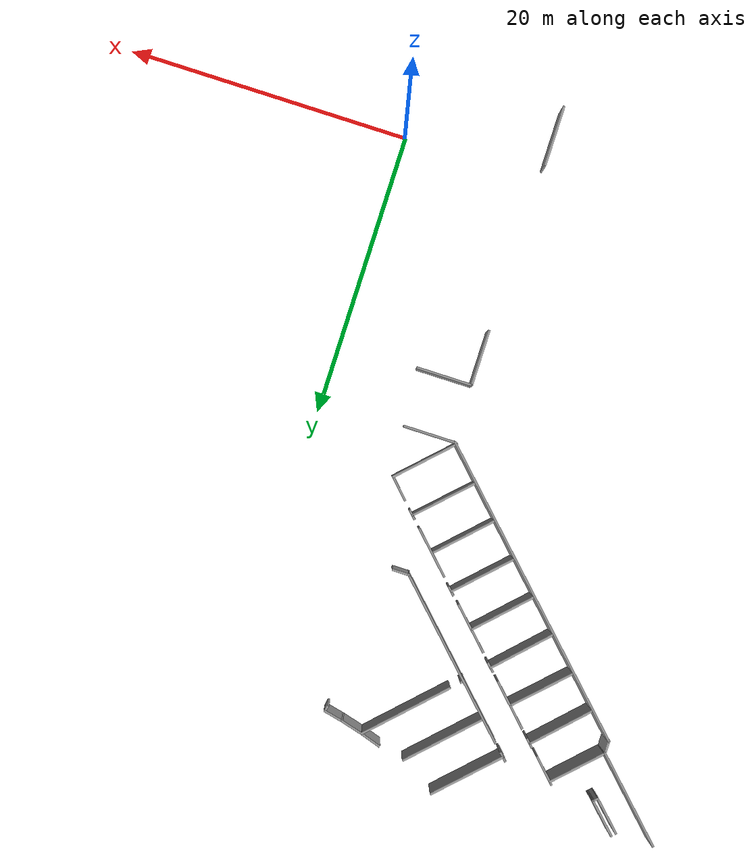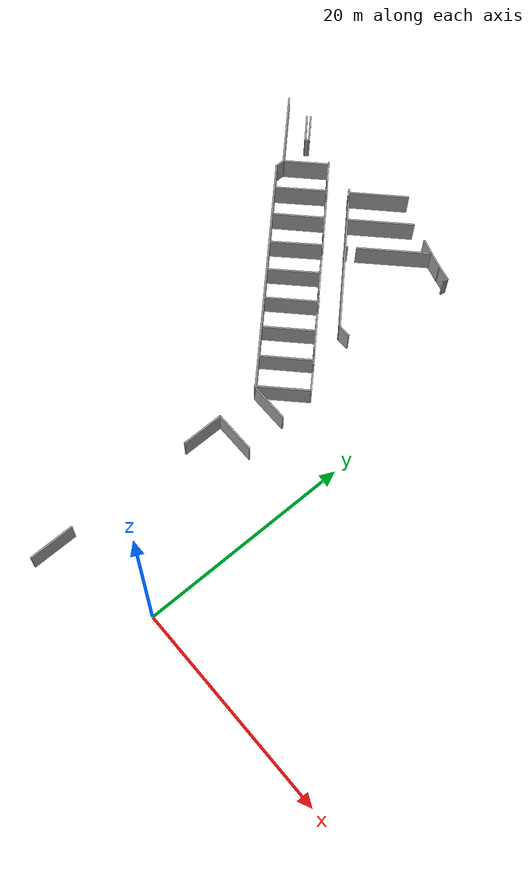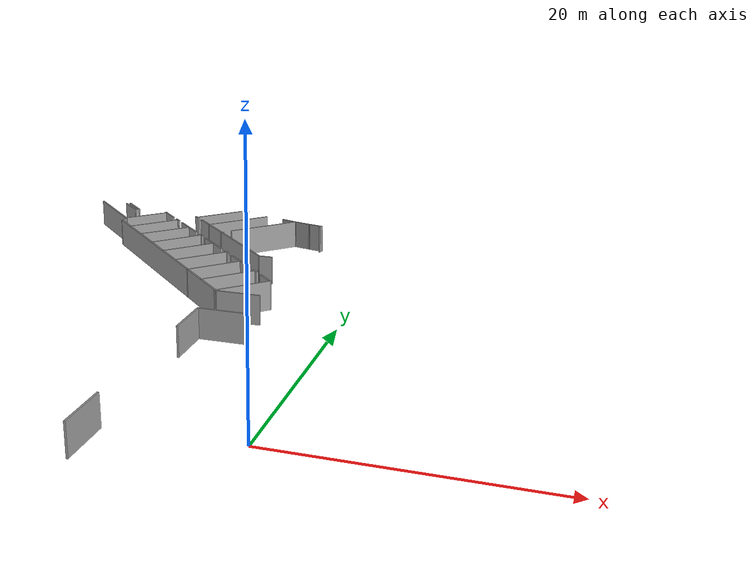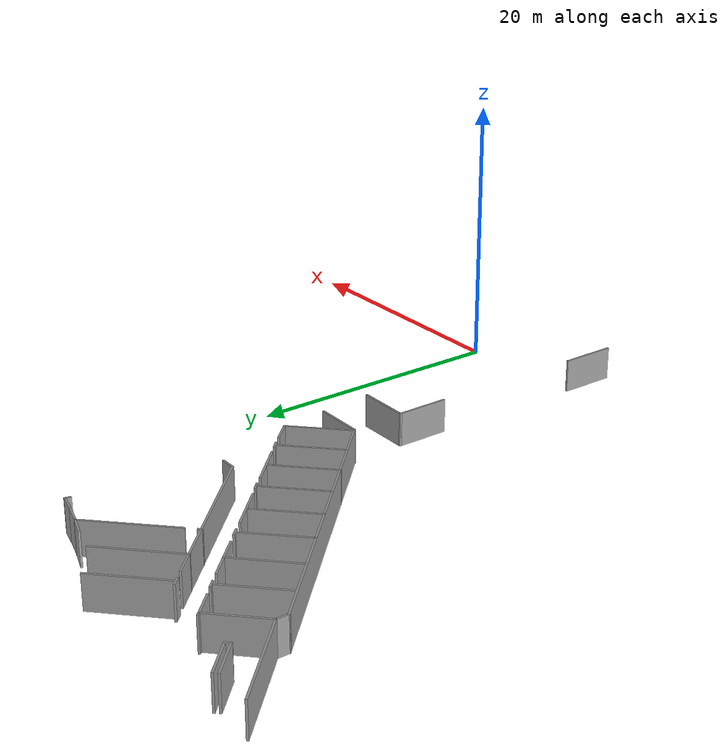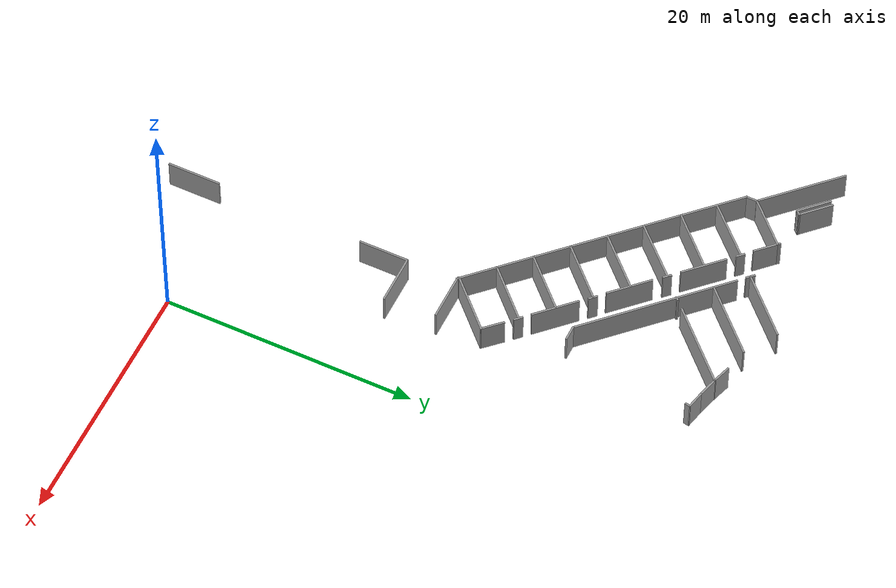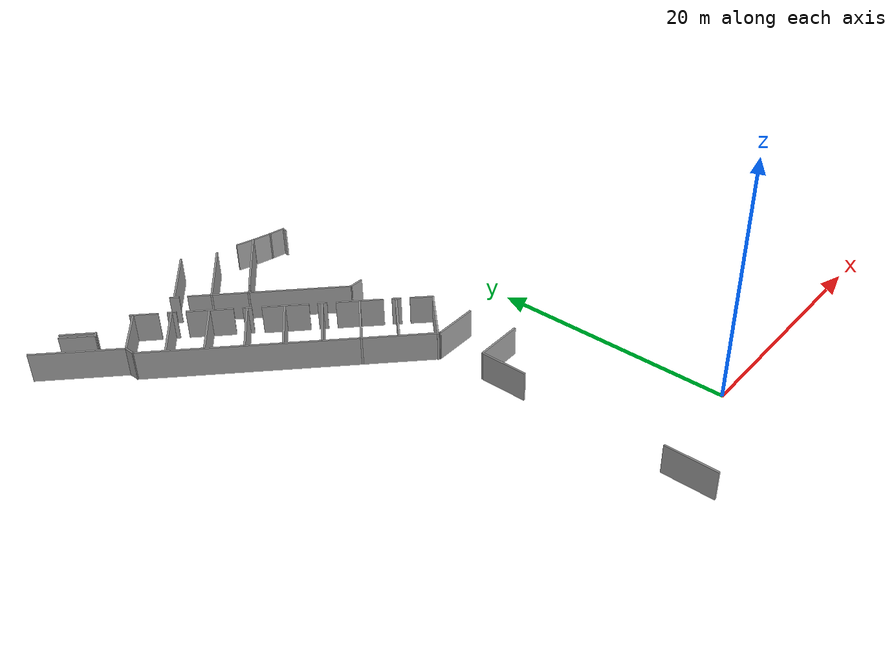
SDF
<sdf version="1.7">
 <model name="TI_1">
  <pose>-0.810812 4.85868 0 0 -0 0</pose>
  <link name="Wall_100">
   <collision name="Wall_100_Collision">
    <geometry><box><size>1.75 0.15 2.5</size></box></geometry>
    <pose>0 0 1.25 0 -0 0</pose>
   </collision>
   <visual name="Wall_100_Visual">
    <pose>0 0 1.25 0 -0 0</pose>
    <geometry><box><size>1.75 0.15 2.5</size></box></geometry>
    <material>
     <script><uri>file://media/materials/scripts/gazebo.material</uri><name>Gazebo/Grey</name></script>
     <ambient>1 1 1 1</ambient>
    </material>
    <meta><layer>0</layer></meta>
   </visual>
   <pose>-8.06735 34.8632 0 0 -0 -0.261799</pose>
  </link>
  <link name="Wall_101">
   <collision name="Wall_101_Collision">
    <geometry><box><size>1.47097 0.15 2.5</size></box></geometry>
    <pose>0 0 1.25 0 -0 0</pose>
   </collision>
   <visual name="Wall_101_Visual">
    <pose>0 0 1.25 0 -0 0</pose>
    <geometry><box><size>1.47097 0.15 2.5</size></box></geometry>
    <material>
     <script><uri>file://media/materials/scripts/gazebo.material</uri><name>Gazebo/Grey</name></script>
     <ambient>1 1 1 1</ambient>
    </material>
    <meta><layer>0</layer></meta>
   </visual>
   <pose>-6.64996 34.5124 0 0 -0 -0.219449</pose>
  </link>
  <link name="Wall_102">
   <collision name="Wall_102_Collision">
    <geometry><box><size>0.491524 0.15 2.5</size></box></geometry>
    <pose>0 0 1.25 0 -0 0</pose>
   </collision>
   <visual name="Wall_102_Visual">
    <pose>0 0 1.25 0 -0 0</pose>
    <geometry><box><size>0.491524 0.15 2.5</size></box></geometry>
    <material>
     <script><uri>file://media/materials/scripts/gazebo.material</uri><name>Gazebo/Grey</name></script>
     <ambient>1 1 1 1</ambient>
    </material>
    <meta><layer>0</layer></meta>
   </visual>
   <pose>-6.04049 34.2015 0 0 -0 -1.77829</pose>
  </link>
  <link name="Wall_286">
   <collision name="Wall_286_Collision">
    <geometry><box><size>7.25 0.15 2.5</size></box></geometry>
    <pose>0 0 1.25 0 -0 0</pose>
   </collision>
   <visual name="Wall_286_Visual">
    <pose>0 0 1.25 0 -0 0</pose>
    <geometry><box><size>7.25 0.15 2.5</size></box></geometry>
    <material>
     <script><uri>file://media/materials/scripts/gazebo.material</uri><name>Gazebo/Grey</name></script>
     <ambient>1 1 1 1</ambient>
    </material>
    <meta><layer>0</layer></meta>
   </visual>
   <pose>-27.5174 33.7929 0 0 -0 -0.785398</pose>
  </link>
  <link name="Wall_287">
   <collision name="Wall_287_Collision">
    <geometry><box><size>4.3655 0.15 2.5</size></box></geometry>
    <pose>0 0 1.25 0 -0 0</pose>
   </collision>
   <visual name="Wall_287_Visual">
    <pose>0 0 1.25 0 -0 0</pose>
    <geometry><box><size>4.3655 0.15 2.5</size></box></geometry>
    <material>
     <script><uri>file://media/materials/scripts/gazebo.material</uri><name>Gazebo/Grey</name></script>
     <ambient>1 1 1 1</ambient>
    </material>
    <meta><layer>0</layer></meta>
   </visual>
   <pose>-23.5168 32.7732 0 0 -0 0.785443</pose>
  </link>
  <link name="Wall_288">
   <collision name="Wall_288_Collision">
    <geometry><box><size>0.354135 0.15 2.5</size></box></geometry>
    <pose>0 0 1.25 0 -0 0</pose>
   </collision>
   <visual name="Wall_288_Visual">
    <pose>0 0 1.25 0 -0 0</pose>
    <geometry><box><size>0.354135 0.15 2.5</size></box></geometry>
    <material>
     <script><uri>file://media/materials/scripts/gazebo.material</uri><name>Gazebo/Grey</name></script>
     <ambient>1 1 1 1</ambient>
    </material>
    <meta><layer>0</layer></meta>
   </visual>
   <pose>-22.0907 34.3407 0 0 -0 2.28545</pose>
  </link>
  <link name="Wall_292">
   <collision name="Wall_292_Collision">
    <geometry><box><size>2.80551 0.15 2.5</size></box></geometry>
    <pose>0 0 1.25 0 -0 0</pose>
   </collision>
   <visual name="Wall_292_Visual">
    <pose>0 0 1.25 0 -0 0</pose>
    <geometry><box><size>2.80551 0.15 2.5</size></box></geometry>
    <material>
     <script><uri>file://media/materials/scripts/gazebo.material</uri><name>Gazebo/Grey</name></script>
     <ambient>1 1 1 1</ambient>
    </material>
    <meta><layer>0</layer></meta>
   </visual>
   <pose>-26.1712 35.5585 0 0 -0 -0.782643</pose>
  </link>
  <link name="Wall_293">
   <collision name="Wall_293_Collision">
    <geometry><box><size>0.501141 0.15 2.5</size></box></geometry>
    <pose>0 0 1.25 0 -0 0</pose>
   </collision>
   <visual name="Wall_293_Visual">
    <pose>0 0 1.25 0 -0 0</pose>
    <geometry><box><size>0.501141 0.15 2.5</size></box></geometry>
    <material>
     <script><uri>file://media/materials/scripts/gazebo.material</uri><name>Gazebo/Grey</name></script>
     <ambient>1 1 1 1</ambient>
    </material>
    <meta><layer>0</layer></meta>
   </visual>
   <pose>-25.3539 34.4981 0 0 -0 -2.35619</pose>
  </link>
  <link name="Wall_294">
   <collision name="Wall_294_Collision">
    <geometry><box><size>2.79823 0.15 2.5</size></box></geometry>
    <pose>0 0 1.25 0 -0 0</pose>
   </collision>
   <visual name="Wall_294_Visual">
    <pose>0 0 1.25 0 -0 0</pose>
    <geometry><box><size>2.79823 0.15 2.5</size></box></geometry>
    <material>
     <script><uri>file://media/materials/scripts/gazebo.material</uri><name>Gazebo/Grey</name></script>
     <ambient>1 1 1 1</ambient>
    </material>
    <meta><layer>0</layer></meta>
   </visual>
   <pose>-26.4195 35.3051 0 0 -0 2.36172</pose>
  </link>
  <link name="Wall_297">
   <collision name="Wall_297_Collision">
    <geometry><box><size>1 0.15 2.5</size></box></geometry>
    <pose>0 0 1.25 0 -0 0</pose>
   </collision>
   <visual name="Wall_297_Visual">
    <pose>0 0 1.25 0 -0 0</pose>
    <geometry><box><size>1 0.15 2.5</size></box></geometry>
    <material>
     <script><uri>file://media/materials/scripts/gazebo.material</uri><name>Gazebo/Grey</name></script>
     <ambient>1 1 1 1</ambient>
    </material>
    <meta><layer>0</layer></meta>
   </visual>
   <pose>-25.0071 30.8577 0 0 -0 -1.5708</pose>
  </link>
  <link name="Wall_299">
   <collision name="Wall_299_Collision">
    <geometry><box><size>23 0.15 2.5</size></box></geometry>
    <pose>0 0 1.25 0 -0 0</pose>
   </collision>
   <visual name="Wall_299_Visual">
    <pose>0 0 1.25 0 -0 0</pose>
    <geometry><box><size>23 0.15 2.5</size></box></geometry>
    <material>
     <script><uri>file://media/materials/scripts/gazebo.material</uri><name>Gazebo/Grey</name></script>
     <ambient>1 1 1 1</ambient>
    </material>
    <meta><layer>0</layer></meta>
   </visual>
   <pose>-16.9284 22.354 0 0 -0 -0.785398</pose>
  </link>
  <link name="Wall_300">
   <collision name="Wall_300_Collision">
    <geometry><box><size>3.75 0.15 2.5</size></box></geometry>
    <pose>0 0 1.25 0 -0 0</pose>
   </collision>
   <visual name="Wall_300_Visual">
    <pose>0 0 1.25 0 -0 0</pose>
    <geometry><box><size>3.75 0.15 2.5</size></box></geometry>
    <material>
     <script><uri>file://media/materials/scripts/gazebo.material</uri><name>Gazebo/Grey</name></script>
     <ambient>1 1 1 1</ambient>
    </material>
    <meta><layer>0</layer></meta>
   </visual>
   <pose>-7.04974 14.2753 0 0 -0 0</pose>
  </link>
  <link name="Wall_304">
   <collision name="Wall_304_Collision">
    <geometry><box><size>2 0.15 2.5</size></box></geometry>
    <pose>0 0 1.25 0 -0 0</pose>
   </collision>
   <visual name="Wall_304_Visual">
    <pose>0 0 1.25 0 -0 0</pose>
    <geometry><box><size>2 0.15 2.5</size></box></geometry>
    <material>
     <script><uri>file://media/materials/scripts/gazebo.material</uri><name>Gazebo/Grey</name></script>
     <ambient>1 1 1 1</ambient>
    </material>
    <meta><layer>0</layer></meta>
   </visual>
   <pose>-21.3698 33.6096 0 0 -0 -0.785398</pose>
  </link>
  <link name="Wall_306">
   <collision name="Wall_306_Collision">
    <geometry><box><size>0.717184 0.15 2.5</size></box></geometry>
    <pose>0 0 1.25 0 -0 0</pose>
   </collision>
   <visual name="Wall_306_Visual">
    <pose>0 0 1.25 0 -0 0</pose>
    <geometry><box><size>0.717184 0.15 2.5</size></box></geometry>
    <material>
     <script><uri>file://media/materials/scripts/gazebo.material</uri><name>Gazebo/Grey</name></script>
     <ambient>1 1 1 1</ambient>
    </material>
    <meta><layer>0</layer></meta>
   </visual>
   <pose>-19.9184 32.2127 0 0 -0 -0.790688</pose>
  </link>
  <link name="Wall_309">
   <collision name="Wall_309_Collision">
    <geometry><box><size>4.99165 0.15 2.5</size></box></geometry>
    <pose>0 0 1.25 0 -0 0</pose>
   </collision>
   <visual name="Wall_309_Visual">
    <pose>0 0 1.25 0 -0 0</pose>
    <geometry><box><size>4.99165 0.15 2.5</size></box></geometry>
    <material>
     <script><uri>file://media/materials/scripts/gazebo.material</uri><name>Gazebo/Grey</name></script>
     <ambient>1 1 1 1</ambient>
    </material>
    <meta><layer>0</layer></meta>
   </visual>
   <pose>-21.6347 30.5013 0 0 -0 -2.34807</pose>
  </link>
  <link name="Wall_311">
   <collision name="Wall_311_Collision">
    <geometry><box><size>3.67321 0.15 2.5</size></box></geometry>
    <pose>0 0 1.25 0 -0 0</pose>
   </collision>
   <visual name="Wall_311_Visual">
    <pose>0 0 1.25 0 -0 0</pose>
    <geometry><box><size>3.67321 0.15 2.5</size></box></geometry>
    <material>
     <script><uri>file://media/materials/scripts/gazebo.material</uri><name>Gazebo/Grey</name></script>
     <ambient>1 1 1 1</ambient>
    </material>
    <meta><layer>0</layer></meta>
   </visual>
   <pose>-17.8604 30.1542 0 0 -0 -0.787539</pose>
  </link>
  <link name="Wall_313">
   <collision name="Wall_313_Collision">
    <geometry><box><size>4.95578 0.15 2.5</size></box></geometry>
    <pose>0 0 1.25 0 -0 0</pose>
   </collision>
   <visual name="Wall_313_Visual">
    <pose>0 0 1.25 0 -0 0</pose>
    <geometry><box><size>4.95578 0.15 2.5</size></box></geometry>
    <material>
     <script><uri>file://media/materials/scripts/gazebo.material</uri><name>Gazebo/Grey</name></script>
     <ambient>1 1 1 1</ambient>
    </material>
    <meta><layer>0</layer></meta>
   </visual>
   <pose>-19.6155 28.4418 0 0 -0 -2.3609</pose>
  </link>
  <link name="Wall_315">
   <collision name="Wall_315_Collision">
    <geometry><box><size>0.723368 0.15 2.5</size></box></geometry>
    <pose>0 0 1.25 0 -0 0</pose>
   </collision>
   <visual name="Wall_315_Visual">
    <pose>0 0 1.25 0 -0 0</pose>
    <geometry><box><size>0.723368 0.15 2.5</size></box></geometry>
    <material>
     <script><uri>file://media/materials/scripts/gazebo.material</uri><name>Gazebo/Grey</name></script>
     <ambient>1 1 1 1</ambient>
    </material>
    <meta><layer>0</layer></meta>
   </visual>
   <pose>-15.8065 28.1164 0 0 -0 -0.785398</pose>
  </link>
  <link name="Wall_318">
   <collision name="Wall_318_Collision">
    <geometry><box><size>5.00129 0.15 2.5</size></box></geometry>
    <pose>0 0 1.25 0 -0 0</pose>
   </collision>
   <visual name="Wall_318_Visual">
    <pose>0 0 1.25 0 -0 0</pose>
    <geometry><box><size>5.00129 0.15 2.5</size></box></geometry>
    <material>
     <script><uri>file://media/materials/scripts/gazebo.material</uri><name>Gazebo/Grey</name></script>
     <ambient>1 1 1 1</ambient>
    </material>
    <meta><layer>0</layer></meta>
   </visual>
   <pose>-17.5243 26.3826 0 0 -0 -2.34531</pose>
  </link>
  <link name="Wall_320">
   <collision name="Wall_320_Collision">
    <geometry><box><size>3.68074 0.15 2.5</size></box></geometry>
    <pose>0 0 1.25 0 -0 0</pose>
   </collision>
   <visual name="Wall_320_Visual">
    <pose>0 0 1.25 0 -0 0</pose>
    <geometry><box><size>3.68074 0.15 2.5</size></box></geometry>
    <material>
     <script><uri>file://media/materials/scripts/gazebo.material</uri><name>Gazebo/Grey</name></script>
     <ambient>1 1 1 1</ambient>
    </material>
    <meta><layer>0</layer></meta>
   </visual>
   <pose>-13.7367 26.0038 0 0 -0 -0.785398</pose>
  </link>
  <link name="Wall_322">
   <collision name="Wall_322_Collision">
    <geometry><box><size>4.9633 0.15 2.5</size></box></geometry>
    <pose>0 0 1.25 0 -0 0</pose>
   </collision>
   <visual name="Wall_322_Visual">
    <pose>0 0 1.25 0 -0 0</pose>
    <geometry><box><size>4.9633 0.15 2.5</size></box></geometry>
    <material>
     <script><uri>file://media/materials/scripts/gazebo.material</uri><name>Gazebo/Grey</name></script>
     <ambient>1 1 1 1</ambient>
    </material>
    <meta><layer>0</layer></meta>
   </visual>
   <pose>-15.4971 24.3288 0 0 -0 -2.35306</pose>
  </link>
  <link name="Wall_324">
   <collision name="Wall_324_Collision">
    <geometry><box><size>0.75 0.15 2.5</size></box></geometry>
    <pose>0 0 1.25 0 -0 0</pose>
   </collision>
   <visual name="Wall_324_Visual">
    <pose>0 0 1.25 0 -0 0</pose>
    <geometry><box><size>0.75 0.15 2.5</size></box></geometry>
    <material>
     <script><uri>file://media/materials/scripts/gazebo.material</uri><name>Gazebo/Grey</name></script>
     <ambient>1 1 1 1</ambient>
    </material>
    <meta><layer>0</layer></meta>
   </visual>
   <pose>-11.6788 23.9993 0 0 -0 -0.785398</pose>
  </link>
  <link name="Wall_326">
   <collision name="Wall_326_Collision">
    <geometry><box><size>5.00854 0.15 2.5</size></box></geometry>
    <pose>0 0 1.25 0 -0 0</pose>
   </collision>
   <visual name="Wall_326_Visual">
    <pose>0 0 1.25 0 -0 0</pose>
    <geometry><box><size>5.00854 0.15 2.5</size></box></geometry>
    <material>
     <script><uri>file://media/materials/scripts/gazebo.material</uri><name>Gazebo/Grey</name></script>
     <ambient>1 1 1 1</ambient>
    </material>
    <meta><layer>0</layer></meta>
   </visual>
   <pose>-13.4166 22.2803 0 0 -0 -2.35619</pose>
  </link>
  <link name="Wall_328">
   <collision name="Wall_328_Collision">
    <geometry><box><size>3.75 0.15 2.5</size></box></geometry>
    <pose>0 0 1.25 0 -0 0</pose>
   </collision>
   <visual name="Wall_328_Visual">
    <pose>0 0 1.25 0 -0 0</pose>
    <geometry><box><size>3.75 0.15 2.5</size></box></geometry>
    <material>
     <script><uri>file://media/materials/scripts/gazebo.material</uri><name>Gazebo/Grey</name></script>
     <ambient>1 1 1 1</ambient>
    </material>
    <meta><layer>0</layer></meta>
   </visual>
   <pose>-9.62588 21.9037 0 0 -0 -0.785398</pose>
  </link>
  <link name="Wall_330">
   <collision name="Wall_330_Collision">
    <geometry><box><size>4.99345 0.15 2.5</size></box></geometry>
    <pose>0 0 1.25 0 -0 0</pose>
   </collision>
   <visual name="Wall_330_Visual">
    <pose>0 0 1.25 0 -0 0</pose>
    <geometry><box><size>4.99345 0.15 2.5</size></box></geometry>
    <material>
     <script><uri>file://media/materials/scripts/gazebo.material</uri><name>Gazebo/Grey</name></script>
     <ambient>1 1 1 1</ambient>
    </material>
    <meta><layer>0</layer></meta>
   </visual>
   <pose>-11.3628 20.2051 0 0 -0 -2.35619</pose>
  </link>
  <link name="Wall_332">
   <collision name="Wall_332_Collision">
    <geometry><box><size>0.75 0.15 2.5</size></box></geometry>
    <pose>0 0 1.25 0 -0 0</pose>
   </collision>
   <visual name="Wall_332_Visual">
    <pose>0 0 1.25 0 -0 0</pose>
    <geometry><box><size>0.75 0.15 2.5</size></box></geometry>
    <material>
     <script><uri>file://media/materials/scripts/gazebo.material</uri><name>Gazebo/Grey</name></script>
     <ambient>1 1 1 1</ambient>
    </material>
    <meta><layer>0</layer></meta>
   </visual>
   <pose>-7.57111 19.8596 0 0 -0 -0.785398</pose>
  </link>
  <link name="Wall_335">
   <collision name="Wall_335_Collision">
    <geometry><box><size>4.97839 0.15 2.5</size></box></geometry>
    <pose>0 0 1.25 0 -0 0</pose>
   </collision>
   <visual name="Wall_335_Visual">
    <pose>0 0 1.25 0 -0 0</pose>
    <geometry><box><size>4.97839 0.15 2.5</size></box></geometry>
    <material>
     <script><uri>file://media/materials/scripts/gazebo.material</uri><name>Gazebo/Grey</name></script>
     <ambient>1 1 1 1</ambient>
    </material>
    <meta><layer>0</layer></meta>
   </visual>
   <pose>-9.32495 18.1673 0 0 -0 -2.35932</pose>
  </link>
  <link name="Wall_337">
   <collision name="Wall_337_Collision">
    <geometry><box><size>1.91563 0.15 2.5</size></box></geometry>
    <pose>0 0 1.25 0 -0 0</pose>
   </collision>
   <visual name="Wall_337_Visual">
    <pose>0 0 1.25 0 -0 0</pose>
    <geometry><box><size>1.91563 0.15 2.5</size></box></geometry>
    <material>
     <script><uri>file://media/materials/scripts/gazebo.material</uri><name>Gazebo/Grey</name></script>
     <ambient>1 1 1 1</ambient>
    </material>
    <meta><layer>0</layer></meta>
   </visual>
   <pose>-6.16685 18.4233 0 0 -0 -0.802491</pose>
  </link>
  <link name="Wall_346">
   <collision name="Wall_346_Collision">
    <geometry><box><size>5 0.15 2.5</size></box></geometry>
    <pose>0 0 1.25 0 -0 0</pose>
   </collision>
   <visual name="Wall_346_Visual">
    <pose>0 0 1.25 0 -0 0</pose>
    <geometry><box><size>5 0.15 2.5</size></box></geometry>
    <material>
     <script><uri>file://media/materials/scripts/gazebo.material</uri><name>Gazebo/Grey</name></script>
     <ambient>1 1 1 1</ambient>
    </material>
    <meta><layer>0</layer></meta>
   </visual>
   <pose>-7.2681 16.0738 0 0 -0 -2.35619</pose>
  </link>
  <link name="Wall_361">
   <collision name="Wall_361_Collision">
    <geometry><box><size>4 0.15 2.5</size></box></geometry>
    <pose>0 0 1.25 0 -0 0</pose>
   </collision>
   <visual name="Wall_361_Visual">
    <pose>0 0 1.25 0 -0 0</pose>
    <geometry><box><size>4 0.15 2.5</size></box></geometry>
    <material>
     <script><uri>file://media/materials/scripts/gazebo.material</uri><name>Gazebo/Grey</name></script>
     <ambient>1 1 1 1</ambient>
    </material>
    <meta><layer>0</layer></meta>
   </visual>
   <pose>-6.80464 10.2221 0 0 -0 3.14159</pose>
  </link>
  <link name="Wall_363">
   <collision name="Wall_363_Collision">
    <geometry><box><size>4 0.15 2.5</size></box></geometry>
    <pose>0 0 1.25 0 -0 0</pose>
   </collision>
   <visual name="Wall_363_Visual">
    <pose>0 0 1.25 0 -0 0</pose>
    <geometry><box><size>4 0.15 2.5</size></box></geometry>
    <material>
     <script><uri>file://media/materials/scripts/gazebo.material</uri><name>Gazebo/Grey</name></script>
     <ambient>1 1 1 1</ambient>
    </material>
    <meta><layer>0</layer></meta>
   </visual>
   <pose>-8.72964 8.29712 0 0 -0 -1.5708</pose>
  </link>
  <link name="Wall_400">
   <collision name="Wall_400_Collision">
    <geometry><box><size>4.25 0.15 2.5</size></box></geometry>
    <pose>0 0 1.25 0 -0 0</pose>
   </collision>
   <visual name="Wall_400_Visual">
    <pose>0 0 1.25 0 -0 0</pose>
    <geometry><box><size>4.25 0.15 2.5</size></box></geometry>
    <material>
     <script><uri>file://media/materials/scripts/gazebo.material</uri><name>Gazebo/Grey</name></script>
     <ambient>1 1 1 1</ambient>
    </material>
    <meta><layer>0</layer></meta>
   </visual>
   <pose>-8.91092 -7.63957 0 0 -0 -1.5708</pose>
  </link>
  <link name="Wall_54">
   <collision name="Wall_54_Collision">
    <geometry><box><size>0.75 0.15 2.5</size></box></geometry>
    <pose>0 0 1.25 0 -0 0</pose>
   </collision>
   <visual name="Wall_54_Visual">
    <pose>0 0 1.25 0 -0 0</pose>
    <geometry><box><size>0.75 0.15 2.5</size></box></geometry>
    <material>
     <script><uri>file://media/materials/scripts/gazebo.material</uri><name>Gazebo/Grey</name></script>
     <ambient>1 1 1 1</ambient>
    </material>
    <meta><layer>0</layer></meta>
   </visual>
   <pose>-18.4744 33.656 0 0 -0 -0.785398</pose>
  </link>
  <link name="Wall_56">
   <collision name="Wall_56_Collision">
    <geometry><box><size>13 0.15 2.5</size></box></geometry>
    <pose>0 0 1.25 0 -0 0</pose>
   </collision>
   <visual name="Wall_56_Visual">
    <pose>0 0 1.25 0 -0 0</pose>
    <geometry><box><size>13 0.15 2.5</size></box></geometry>
    <material>
     <script><uri>file://media/materials/scripts/gazebo.material</uri><name>Gazebo/Grey</name></script>
     <ambient>1 1 1 1</ambient>
    </material>
    <meta><layer>0</layer></meta>
   </visual>
   <pose>-13.1373 28.3524 0 0 -0 -0.785398</pose>
  </link>
  <link name="Wall_57">
   <collision name="Wall_57_Collision">
    <geometry><box><size>1.25 0.15 2.5</size></box></geometry>
    <pose>0 0 1.25 0 -0 0</pose>
   </collision>
   <visual name="Wall_57_Visual">
    <pose>0 0 1.25 0 -0 0</pose>
    <geometry><box><size>1.25 0.15 2.5</size></box></geometry>
    <material>
     <script><uri>file://media/materials/scripts/gazebo.material</uri><name>Gazebo/Grey</name></script>
     <ambient>1 1 1 1</ambient>
    </material>
    <meta><layer>0</layer></meta>
   </visual>
   <pose>-8.04418 23.8093 0 0 -0 0</pose>
  </link>
  <link name="Wall_83">
   <collision name="Wall_83_Collision">
    <geometry><box><size>5.60192 0.15 2.5</size></box></geometry>
    <pose>0 0 1.25 0 -0 0</pose>
   </collision>
   <visual name="Wall_83_Visual">
    <pose>0 0 1.25 0 -0 0</pose>
    <geometry><box><size>5.60192 0.15 2.5</size></box></geometry>
    <material>
     <script><uri>file://media/materials/scripts/gazebo.material</uri><name>Gazebo/Grey</name></script>
     <ambient>1 1 1 1</ambient>
    </material>
    <meta><layer>0</layer></meta>
   </visual>
   <pose>-16.533 35.5883 0 0 -0 -2.35791</pose>
  </link>
  <link name="Wall_90">
   <collision name="Wall_90_Collision">
    <geometry><box><size>6.23721 0.15 2.5</size></box></geometry>
    <pose>0 0 1.25 0 -0 0</pose>
   </collision>
   <visual name="Wall_90_Visual">
    <pose>0 0 1.25 0 -0 0</pose>
    <geometry><box><size>6.23721 0.15 2.5</size></box></geometry>
    <material>
     <script><uri>file://media/materials/scripts/gazebo.material</uri><name>Gazebo/Grey</name></script>
     <ambient>1 1 1 1</ambient>
    </material>
    <meta><layer>0</layer></meta>
   </visual>
   <pose>-14.2506 33.7629 0 0 -0 -2.35619</pose>
  </link>
  <link name="Wall_95">
   <collision name="Wall_95_Collision">
    <geometry><box><size>1.58752 0.15 2.5</size></box></geometry>
    <pose>0 0 1.25 0 -0 0</pose>
   </collision>
   <visual name="Wall_95_Visual">
    <pose>0 0 1.25 0 -0 0</pose>
    <geometry><box><size>1.58752 0.15 2.5</size></box></geometry>
    <material>
     <script><uri>file://media/materials/scripts/gazebo.material</uri><name>Gazebo/Grey</name></script>
     <ambient>1 1 1 1</ambient>
    </material>
    <meta><layer>0</layer></meta>
   </visual>
   <pose>-9.52395 35.2915 0 0 -0 -0.312901</pose>
  </link>
  <link name="Wall_96">
   <collision name="Wall_96_Collision">
    <geometry><box><size>6.87173 0.15 2.5</size></box></geometry>
    <pose>0 0 1.25 0 -0 0</pose>
   </collision>
   <visual name="Wall_96_Visual">
    <pose>0 0 1.25 0 -0 0</pose>
    <geometry><box><size>6.87173 0.15 2.5</size></box></geometry>
    <material>
     <script><uri>file://media/materials/scripts/gazebo.material</uri><name>Gazebo/Grey</name></script>
     <ambient>1 1 1 1</ambient>
    </material>
    <meta><layer>0</layer></meta>
   </visual>
   <pose>-11.2125 32.6897 0 0 -0 -2.3545</pose>
  </link>
  <link name="Wall_98">
   <collision name="Wall_98_Collision">
    <geometry><box><size>0.348116 0.15 2.5</size></box></geometry>
    <pose>0 0 1.25 0 -0 0</pose>
   </collision>
   <visual name="Wall_98_Visual">
    <pose>0 0 1.25 0 -0 0</pose>
    <geometry><box><size>0.348116 0.15 2.5</size></box></geometry>
    <material>
     <script><uri>file://media/materials/scripts/gazebo.material</uri><name>Gazebo/Grey</name></script>
     <ambient>1 1 1 1</ambient>
    </material>
    <meta><layer>0</layer></meta>
   </visual>
   <pose>-14.2956 29.6066 0 0 -0 0.749699</pose>
  </link>
  <static>1</static>
 </model>
</sdf>
